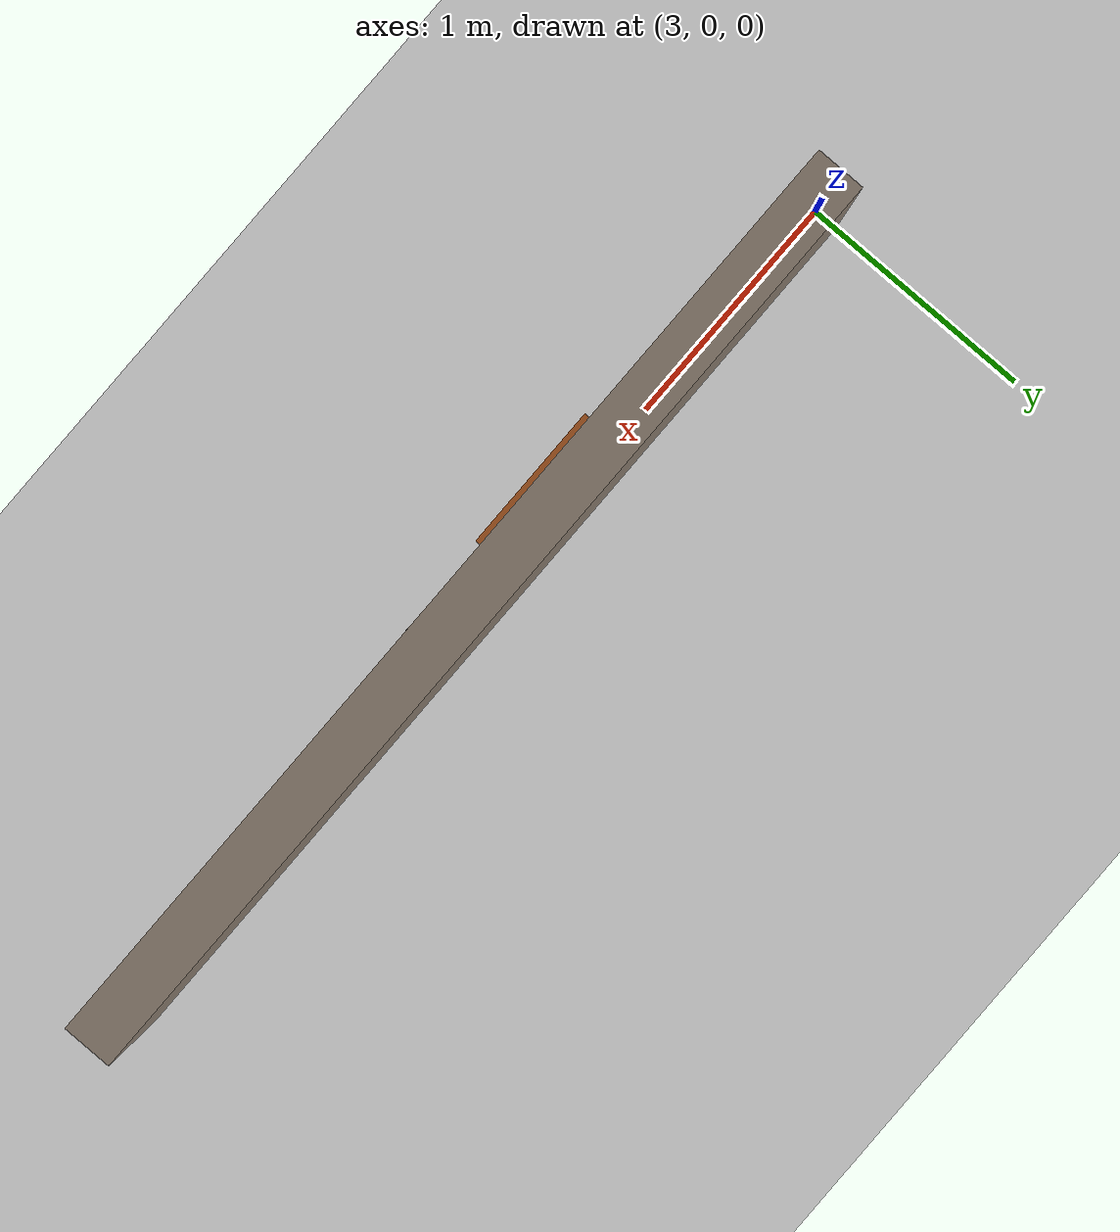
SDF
<?xml version="1.0" encoding="UTF-8"?>
<sdf version="1.9">
  <world name="default">
    <physics type="ode">
      <max_step_size>0.004</max_step_size>
      <real_time_factor>1.0</real_time_factor>
      <real_time_update_rate>250</real_time_update_rate>
    </physics>
    <gravity>0 0 -9.8</gravity>
    <magnetic_field>6e-06 2.3e-05 -4.2e-05</magnetic_field>
    <atmosphere type="adiabatic"/>
    <scene>
      <grid>false</grid>
      <ambient>0.4 0.4 0.4 1</ambient>
      <background>0.7 0.7 0.7 1</background>
      <shadows>true</shadows>
    </scene>
    <model name="ground_plane">
      <static>true</static>
      <link name="link">
        <collision name="collision">
          <geometry>
            <plane>
              <normal>0 0 1</normal>
              <size>1 1</size>
            </plane>
          </geometry>
          <surface>
            <friction>
              <ode/>
            </friction>
            <bounce/>
            <contact/>
          </surface>
        </collision>
        <visual name="visual">
          <geometry>
            <plane>
              <normal>0 0 1</normal>
              <size>500 500</size>
            </plane>
          </geometry>
          <material>
            <ambient>0.8 0.8 0.8 1</ambient>
            <diffuse>0.8 0.8 0.8 1</diffuse>
            <specular>0.8 0.8 0.8 1</specular>
          </material>
        </visual>
        <pose>0 0 0 0 -0 0</pose>
        <inertial>
          <pose>0 0 0 0 -0 0</pose>
          <mass>1</mass>
          <inertia>
            <ixx>1</ixx>
            <ixy>0</ixy>
            <ixz>0</ixz>
            <iyy>1</iyy>
            <iyz>0</iyz>
            <izz>1</izz>
          </inertia>
        </inertial>
        <enable_wind>false</enable_wind>
      </link>
      <pose>0 0 0 0 -0 0</pose>
      <self_collide>false</self_collide>
    </model>
    <light name="sunUTC" type="directional">
      <pose>0 0 500 0 -0 0</pose>
      <cast_shadows>true</cast_shadows>
      <intensity>1</intensity>
      <direction>0.001 0.625 -0.78</direction>
      <diffuse>0.904 0.904 0.904 1</diffuse>
      <specular>0.271 0.271 0.271 1</specular>
      <attenuation>
        <range>2000</range>
        <linear>0</linear>
        <constant>1</constant>
        <quadratic>0</quadratic>
      </attenuation>
      <spot>
        <inner_angle>0</inner_angle>
        <outer_angle>0</outer_angle>
        <falloff>0</falloff>
      </spot>
    </light>
    <spherical_coordinates>
      <surface_model>EARTH_WGS84</surface_model>
      <world_frame_orientation>ENU</world_frame_orientation>
      <latitude_deg>47.397971057728974</latitude_deg>
      <longitude_deg> 8.546163739800146</longitude_deg>
      <elevation>0</elevation>
    </spherical_coordinates>

  <model name="crack_wall">
    <static>true</static>
    <pose>5 0 1.5 0 0 0</pose>
    <link name="link">
      <collision name="collision"><geometry><box><size>4 0.2 3</size></box></geometry></collision>
      <visual name="visual"><geometry><box><size>4 0.2 3</size></box></geometry><material><ambient>0.4 0.35 0.3 1</ambient><diffuse>0.5 0.45 0.4 1</diffuse></material></visual>
    </link>
  </model>
  <model name="corrosion_patch">
    <static>true</static>
    <pose>4.5 -0.06 1.8 0 0 0</pose>
    <link name="link">
      <visual name="visual"><geometry><box><size>0.6 0.15 0.5</size></box></geometry><material><ambient>0.55 0.25 0.05 1</ambient><diffuse>0.6 0.3 0.1 1</diffuse></material></visual>
    </link>
  </model>
  <model name="crack_1">
    <static>true</static>
    <pose>5.2 -0.06 1.8 0 0 0</pose>
    <link name="link">
      <visual name="visual"><geometry><box><size>0.05 0.1 1.2</size></box></geometry><material><ambient>0.1 0.1 0.1 1</ambient><diffuse>0.15 0.15 0.15 1</diffuse></material></visual>
    </link>
  </model>
</world>
</sdf>
